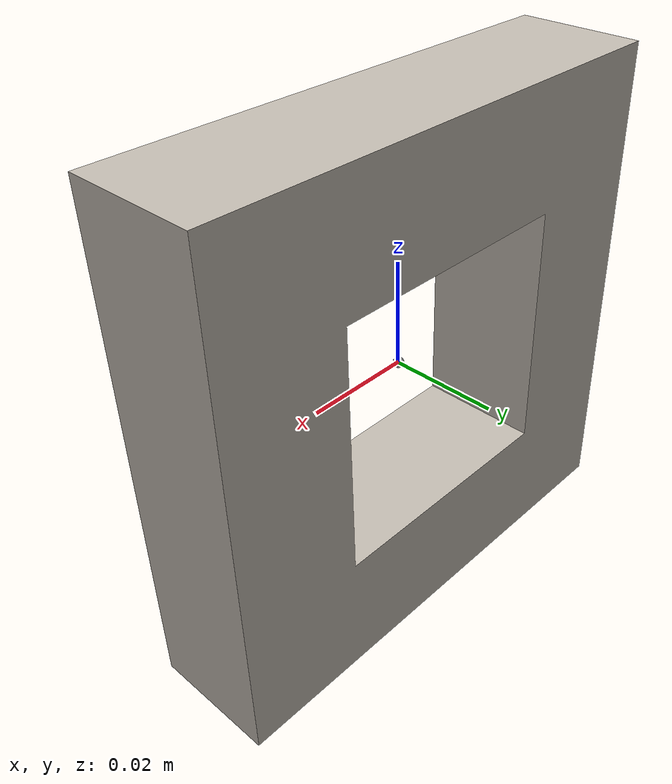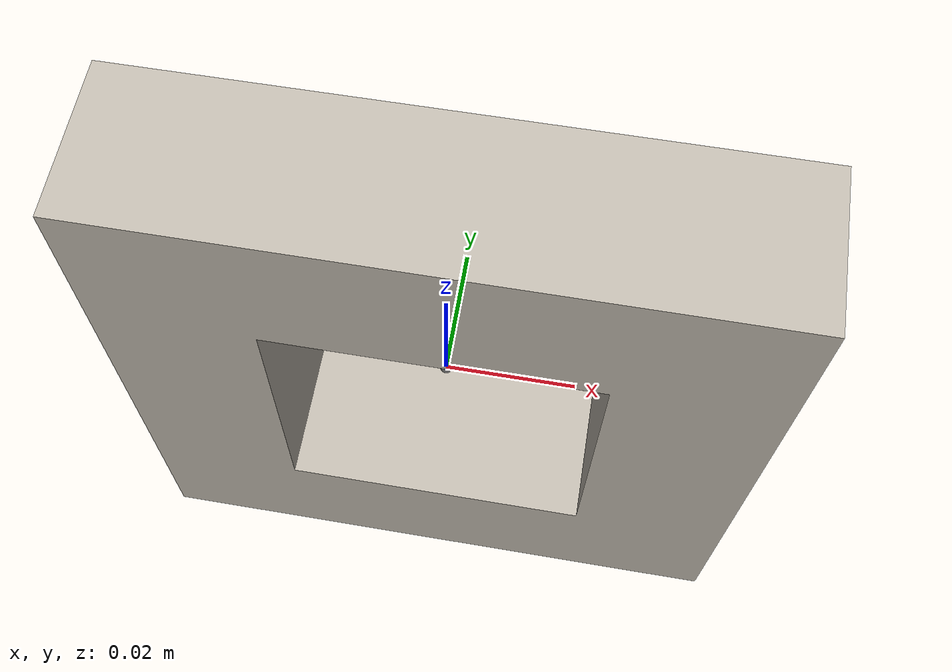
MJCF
<?xml version="1.0" encoding="UTF-8"?>
<mujoco model="aprilcube_voxel_target">
  <!-- Bounding box: 96 x 24 x 96 mm -->
  <!-- Origin at target center, units in meters -->

  <compiler angle="radian" meshdir="."/>

  <asset>
    <texture name="cube_tex" type="2d" file="cube_atlas.png"/>
    <material name="cube_mat" texture="cube_tex" specular="0.1" shininess="0.1"/>
    <mesh name="cube_mesh" file="cube.obj"/>
  </asset>

  <worldbody>
    <body name="cube" pos="0 0 0">
      <freejoint name="cube_joint"/>
      <geom name="cube_visual" type="mesh" mesh="cube_mesh" material="cube_mat" contype="0" conaffinity="0" group="1" density="0"/>
      <geom name="left_post_collision" type="box" pos="-0.036000 0.000000 0.000000" size="0.012000 0.012000 0.048000" density="1250" rgba="0.5 0.5 0.5 0" contype="1" conaffinity="1" group="2"/>
      <geom name="right_post_collision" type="box" pos="0.036000 0.000000 0.000000" size="0.012000 0.012000 0.048000" density="1250" rgba="0.5 0.5 0.5 0" contype="1" conaffinity="1" group="2"/>
      <geom name="bottom_rail_collision" type="box" pos="0.000000 0.000000 -0.036000" size="0.048000 0.012000 0.012000" density="1250" rgba="0.5 0.5 0.5 0" contype="1" conaffinity="1" group="2"/>
      <geom name="top_rail_collision" type="box" pos="0.000000 0.000000 0.036000" size="0.048000 0.012000 0.012000" density="1250" rgba="0.5 0.5 0.5 0" contype="1" conaffinity="1" group="2"/>
      <site name="cube_center" pos="0 0 0" size="0.001"/>
    </body>
  </worldbody>
</mujoco>
